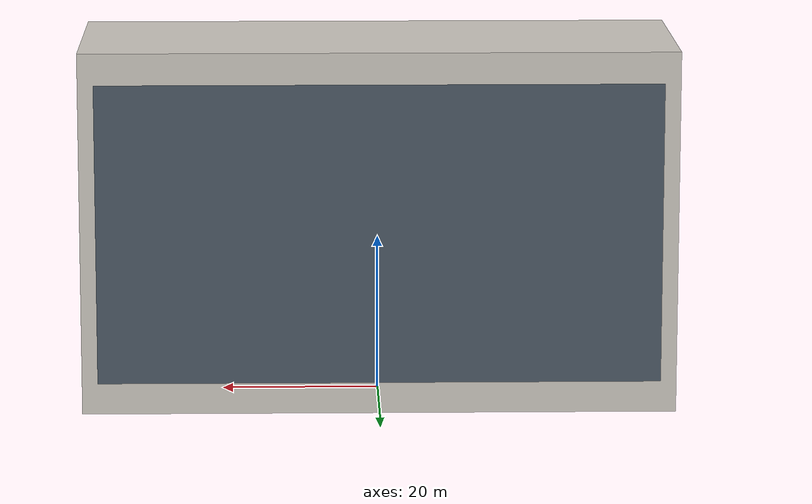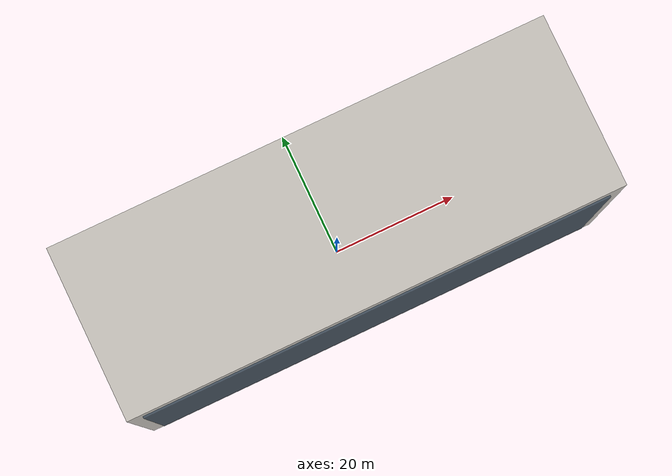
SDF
<?xml version="1.0" ?>
<sdf version="1.8">
  <model name="guangfu_east_tech_block">
    <static>true</static>
    <link name="block_link">
      <collision name="col"><pose>0 0 23.0 0 0 0</pose><geometry><box><size>75.0 26.0 46.0</size></box></geometry></collision>
      <visual name="main_vis"><pose>0 0 23.0 0 0 0</pose><geometry><box><size>75.0 26.0 46.0</size></box></geometry><material><ambient>0.73 0.72 0.70 1</ambient><diffuse>0.80 0.78 0.75 1</diffuse></material></visual>
      <visual name="balconies"><pose>0 0 23.0 0 0 0</pose><geometry><box><size>71.0 26.6 38.0</size></box></geometry><material><ambient>0.22 0.26 0.32 0.88</ambient><diffuse>0.28 0.34 0.40 0.88</diffuse></material></visual>
    </link>
  </model>
</sdf>
